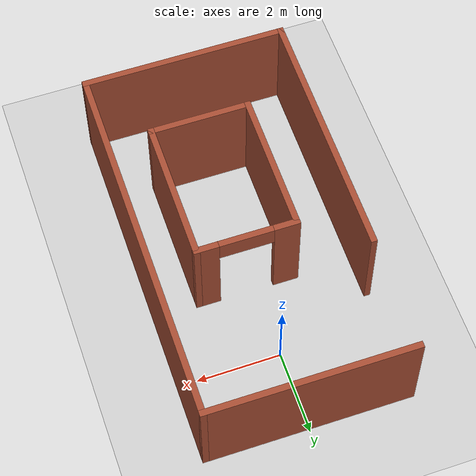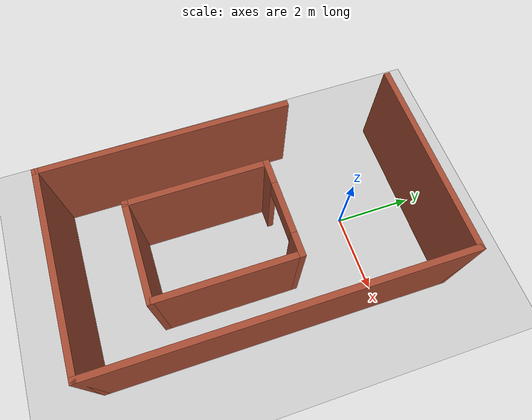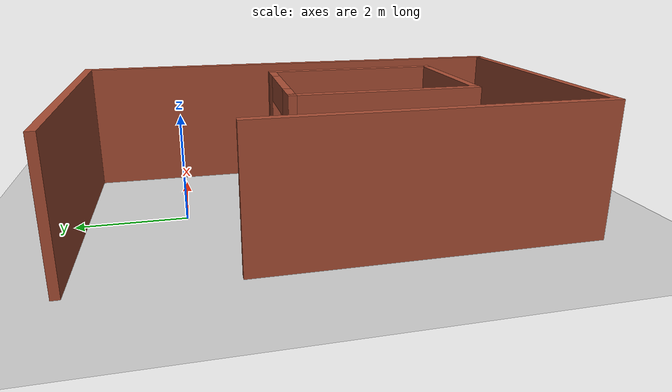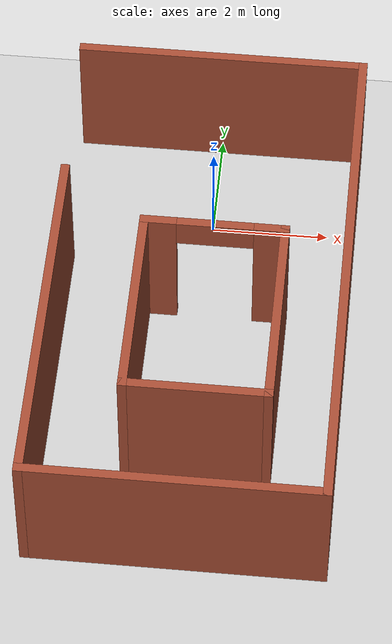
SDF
<sdf version="1.7">
 <world name="default">
  <light name="sun" type="directional">
   <pose>0 0 10 0 -0 0</pose>
   <diffuse>0.8 0.8 0.8 1</diffuse>
   <specular>0.2 0.2 0.2 1</specular>
   <attenuation>
    <range>1000</range>
    <constant>0.9</constant>
    <linear>0.01</linear>
    <quadratic>0.001</quadratic>
   </attenuation>
   <direction>-0.5 0.1 -0.9</direction>
   <spot><inner_angle>0</inner_angle><outer_angle>0</outer_angle><falloff>0</falloff></spot>
  </light>
  <model name="ground_plane">
   <static>1</static>
   <link name="link">
    <collision name="collision">
     <geometry><plane><normal>0 0 1</normal><size>100 100</size></plane></geometry>
     <surface>
      <contact><collide_bitmask>65535</collide_bitmask></contact>
      <friction><ode><mu>100</mu><mu2>50</mu2></ode></friction>
     </surface>
    </collision>
    <visual name="visual">
     <cast_shadows>0</cast_shadows>
     <geometry><plane><normal>0 0 1</normal><size>100 100</size></plane></geometry>
     <material>
      <script><uri>file://media/materials/scripts/gazebo.material</uri><name>Gazebo/Grey</name></script>
     </material>
    </visual>
   </link>
  </model>
  <gravity>0 0 -9.8</gravity>
  <magnetic_field>6e-06 2.3e-05 -4.2e-05</magnetic_field>
  <atmosphere type="adiabatic"/>
  <physics type="ode">
   <max_step_size>0.001</max_step_size>
   <real_time_factor>1</real_time_factor>
   <real_time_update_rate>1000</real_time_update_rate>
  </physics>
  <scene><ambient>0.4 0.4 0.4 1</ambient><background>0.7 0.7 0.7 1</background><shadows>1</shadows></scene>
  <spherical_coordinates>
   <surface_model>EARTH_WGS84</surface_model>
   <latitude_deg>0</latitude_deg>
   <longitude_deg>0</longitude_deg>
   <elevation>0</elevation>
   <heading_deg>0</heading_deg>
  </spherical_coordinates>
  <model name="first_model">
   <pose>-0.018912 -2.56864 0 0 0 -1.57411</pose>
   <link name="Wall_0">
    <collision name="Wall_0_Collision">
     <geometry><box><size>5 0.15 2.5</size></box></geometry>
     <pose>0 0 1.25 0 -0 0</pose>
    </collision>
    <visual name="Wall_0_Visual">
     <pose>0 0 1.25 0 -0 0</pose>
     <geometry><box><size>5 0.15 2.5</size></box></geometry>
     <material>
      <script><uri>file://media/materials/scripts/gazebo.material</uri><name>Gazebo/Bricks</name></script>
      <ambient>1 1 1 1</ambient>
     </material>
     <meta><layer>0</layer></meta>
    </visual>
    <pose>-4.425 0 0 0 -0 -1.5708</pose>
   </link>
   <link name="Wall_10">
    <collision name="Wall_10_Collision">
     <geometry><box><size>3.5 0.15 2.5</size></box></geometry>
     <pose>0 0 1.25 0 -0 0</pose>
    </collision>
    <visual name="Wall_10_Visual">
     <pose>0 0 1.25 0 -0 0</pose>
     <geometry><box><size>3.5 0.15 2.5</size></box></geometry>
     <material>
      <script><uri>file://media/materials/scripts/gazebo.material</uri><name>Gazebo/Bricks</name></script>
      <ambient>1 1 1 1</ambient>
     </material>
     <meta><layer>0</layer></meta>
    </visual>
    <pose>0.965655 -0.984808 0 0 -0 3.14159</pose>
   </link>
   <link name="Wall_13">
    <pose>-0.709345 0.190192 0 0 -0 -1.5708</pose>
    <visual name="Wall_13_Visual_0">
     <pose>-0.953155 0 1.25 0 -0 0</pose>
     <geometry><box><size>0.593691 0.15 2.5</size></box></geometry>
     <material>
      <script><uri>file://media/materials/scripts/gazebo.material</uri><name>Gazebo/Bricks</name></script>
      <ambient>1 1 1 1</ambient>
     </material>
     <meta><layer>0</layer></meta>
    </visual>
    <collision name="Wall_13_Collision_0">
     <geometry><box><size>0.593691 0.15 2.5</size></box></geometry>
     <pose>-0.953155 0 1.25 0 -0 0</pose>
    </collision>
    <visual name="Wall_13_Visual_1">
     <pose>0.940583 0 1.25 0 -0 0</pose>
     <geometry><box><size>0.618833 0.15 2.5</size></box></geometry>
     <material>
      <script><uri>file://media/materials/scripts/gazebo.material</uri><name>Gazebo/Bricks</name></script>
      <ambient>1 1 1 1</ambient>
     </material>
     <meta><layer>0</layer></meta>
    </visual>
    <collision name="Wall_13_Collision_1">
     <geometry><box><size>0.618833 0.15 2.5</size></box></geometry>
     <pose>0.940583 0 1.25 0 -0 0</pose>
    </collision>
    <visual name="Wall_13_Visual_2">
     <pose>-0.012571 0 2.25 0 -0 0</pose>
     <geometry><box><size>1.28748 0.15 0.5</size></box></geometry>
     <material>
      <script><uri>file://media/materials/scripts/gazebo.material</uri><name>Gazebo/Bricks</name></script>
      <ambient>1 1 1 1</ambient>
     </material>
     <meta><layer>0</layer></meta>
    </visual>
    <collision name="Wall_13_Collision_2">
     <geometry><box><size>1.28748 0.15 0.5</size></box></geometry>
     <pose>-0.012571 0 2.25 0 -0 0</pose>
    </collision>
   </link>
   <link name="Wall_2">
    <collision name="Wall_2_Collision">
     <geometry><box><size>9 0.15 2.5</size></box></geometry>
     <pose>0 0 1.25 0 -0 0</pose>
    </collision>
    <visual name="Wall_2_Visual">
     <pose>0 0 1.25 0 -0 0</pose>
     <geometry><box><size>9 0.15 2.5</size></box></geometry>
     <material>
      <script><uri>file://media/materials/scripts/gazebo.material</uri><name>Gazebo/Bricks</name></script>
      <ambient>1 1 1 1</ambient>
     </material>
     <meta><layer>0</layer></meta>
    </visual>
    <pose>0 2.425 0 0 -0 0</pose>
   </link>
   <link name="Wall_5">
    <collision name="Wall_5_Collision">
     <geometry><box><size>5 0.15 2.5</size></box></geometry>
     <pose>0 0 1.25 0 -0 0</pose>
    </collision>
    <visual name="Wall_5_Visual">
     <pose>0 0 1.25 0 -0 0</pose>
     <geometry><box><size>5 0.15 2.5</size></box></geometry>
     <material>
      <script><uri>file://media/materials/scripts/gazebo.material</uri><name>Gazebo/Bricks</name></script>
      <ambient>1 1 1 1</ambient>
     </material>
     <meta><layer>0</layer></meta>
    </visual>
    <pose>4.425 0 0 0 -0 -1.5708</pose>
   </link>
   <link name="Wall_6">
    <collision name="Wall_6_Collision">
     <geometry><box><size>6.25 0.15 2.5</size></box></geometry>
     <pose>0 0 1.25 0 -0 0</pose>
    </collision>
    <visual name="Wall_6_Visual">
     <pose>0 0 1.25 0 -0 0</pose>
     <geometry><box><size>6.25 0.15 2.5</size></box></geometry>
     <material>
      <script><uri>file://media/materials/scripts/gazebo.material</uri><name>Gazebo/Bricks</name></script>
      <ambient>1 1 1 1</ambient>
     </material>
     <meta><layer>0</layer></meta>
    </visual>
    <pose>1.375 -2.425 0 0 -0 3.14159</pose>
   </link>
   <link name="Wall_8">
    <collision name="Wall_8_Collision">
     <geometry><box><size>3.5 0.15 2.5</size></box></geometry>
     <pose>0 0 1.25 0 -0 0</pose>
    </collision>
    <visual name="Wall_8_Visual">
     <pose>0 0 1.25 0 -0 0</pose>
     <geometry><box><size>3.5 0.15 2.5</size></box></geometry>
     <material>
      <script><uri>file://media/materials/scripts/gazebo.material</uri><name>Gazebo/Bricks</name></script>
      <ambient>1 1 1 1</ambient>
     </material>
     <meta><layer>0</layer></meta>
    </visual>
    <pose>0.965655 1.36519 0 0 -0 0</pose>
   </link>
   <link name="Wall_9">
    <collision name="Wall_9_Collision">
     <geometry><box><size>2.5 0.15 2.5</size></box></geometry>
     <pose>0 0 1.25 0 -0 0</pose>
    </collision>
    <visual name="Wall_9_Visual">
     <pose>0 0 1.25 0 -0 0</pose>
     <geometry><box><size>2.5 0.15 2.5</size></box></geometry>
     <material>
      <script><uri>file://media/materials/scripts/gazebo.material</uri><name>Gazebo/Bricks</name></script>
      <ambient>1 1 1 1</ambient>
     </material>
     <meta><layer>0</layer></meta>
    </visual>
    <pose>2.64065 0.190192 0 0 -0 -1.5708</pose>
   </link>
   <static>1</static>
  </model>
 </world>
</sdf>
